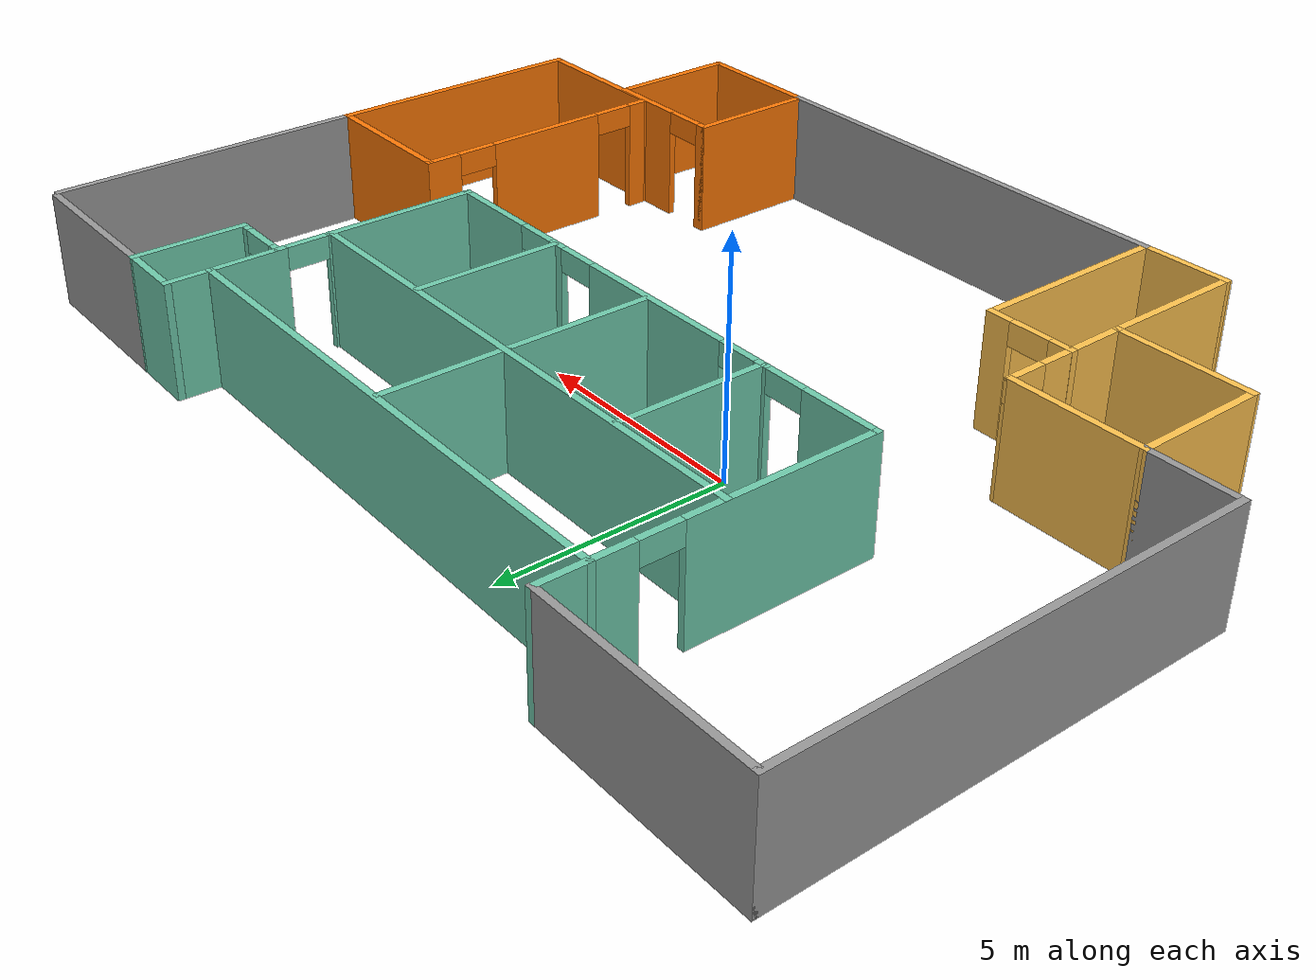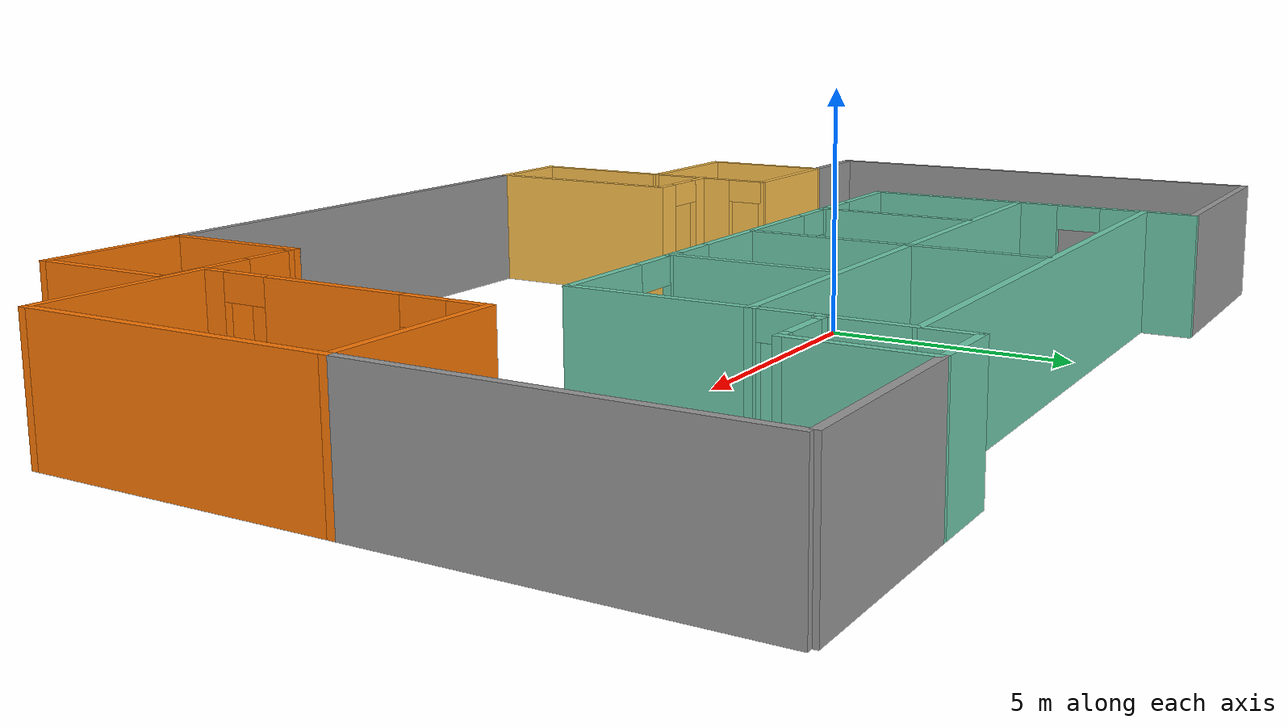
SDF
<?xml version='1.0'?>
<sdf version='1.7'>
  <model name='building'>
    <pose>2.87558 -1.4903 0 0 -0 0</pose>
    <link name='Wall_0'>
      <collision name='Wall_0_Collision'>
        <geometry>
          <box>
            <size>5 0.15 2.5</size>
          </box>
        </geometry>
        <pose>0 0 1.25 0 -0 0</pose>
      </collision>
      <visual name='Wall_0_Visual'>
        <pose>0 0 1.25 0 -0 0</pose>
        <geometry>
          <box>
            <size>5 0.15 2.5</size>
          </box>
        </geometry>
        <material>
          <script>
            <uri>file://media/materials/scripts/gazebo.material</uri>
            <name>Gazebo/Grey</name>
          </script>
          <ambient>1 1 1 1</ambient>
        </material>
        <meta>
          <layer>0</layer>
        </meta>
      </visual>
      <pose>-8.48058 7.9003 0 0 -0 3.14159</pose>
    </link>
    <link name='Wall_10'>
      <pose>-6.19858 -3.3677 0 0 -0 -1.56586</pose>
      <visual name='Wall_10_Visual_0'>
        <pose>-1.49252 0 1.25 0 -0 0</pose>
        <geometry>
          <box>
            <size>0.000994 0.15 2.5</size>
          </box>
        </geometry>
        <material>
          <script>
            <uri>file://media/materials/scripts/gazebo.material</uri>
            <name>Gazebo/Grey</name>
          </script>
          <ambient>1 0.764706 0.305882 1</ambient>
        </material>
        <meta>
          <layer>0</layer>
        </meta>
      </visual>
      <collision name='Wall_10_Collision_0'>
        <geometry>
          <box>
            <size>0.000994 0.15 2.5</size>
          </box>
        </geometry>
        <pose>-1.49252 0 1.25 0 -0 0</pose>
      </collision>
      <visual name='Wall_10_Visual_1'>
        <pose>0.450497 0 1.25 0 -0 0</pose>
        <geometry>
          <box>
            <size>2.08504 0.15 2.5</size>
          </box>
        </geometry>
        <material>
          <script>
            <uri>file://media/materials/scripts/gazebo.material</uri>
            <name>Gazebo/Grey</name>
          </script>
          <ambient>1 0.764706 0.305882 1</ambient>
        </material>
        <meta>
          <layer>0</layer>
        </meta>
      </visual>
      <collision name='Wall_10_Collision_1'>
        <geometry>
          <box>
            <size>2.08504 0.15 2.5</size>
          </box>
        </geometry>
        <pose>0.450497 0 1.25 0 -0 0</pose>
      </collision>
      <visual name='Wall_10_Visual_2'>
        <pose>-1.49252 0 2.25 0 -0 0</pose>
        <geometry>
          <box>
            <size>0.000994 0.15 0.5</size>
          </box>
        </geometry>
        <material>
          <script>
            <uri>file://media/materials/scripts/gazebo.material</uri>
            <name>Gazebo/Grey</name>
          </script>
          <ambient>1 0.764706 0.305882 1</ambient>
        </material>
        <meta>
          <layer>0</layer>
        </meta>
      </visual>
      <collision name='Wall_10_Collision_2'>
        <geometry>
          <box>
            <size>0.000994 0.15 0.5</size>
          </box>
        </geometry>
        <pose>-1.49252 0 2.25 0 -0 0</pose>
      </collision>
      <visual name='Wall_10_Visual_3'>
        <pose>-1.04202 0 2.25 0 -0 0</pose>
        <geometry>
          <box>
            <size>0.9 0.15 0.5</size>
          </box>
        </geometry>
        <material>
          <script>
            <uri>file://media/materials/scripts/gazebo.material</uri>
            <name>Gazebo/Grey</name>
          </script>
          <ambient>1 0.764706 0.305882 1</ambient>
        </material>
        <meta>
          <layer>0</layer>
        </meta>
      </visual>
      <collision name='Wall_10_Collision_3'>
        <geometry>
          <box>
            <size>0.9 0.15 0.5</size>
          </box>
        </geometry>
        <pose>-1.04202 0 2.25 0 -0 0</pose>
      </collision>
    </link>
    <link name='Wall_11'>
      <collision name='Wall_11_Collision'>
        <geometry>
          <box>
            <size>3 0.15 2.5</size>
          </box>
        </geometry>
        <pose>0 0 1.25 0 -0 0</pose>
      </collision>
      <visual name='Wall_11_Visual'>
        <pose>0 0 1.25 0 -0 0</pose>
        <geometry>
          <box>
            <size>3 0.15 2.5</size>
          </box>
        </geometry>
        <material>
          <script>
            <uri>file://media/materials/scripts/gazebo.material</uri>
            <name>Gazebo/Grey</name>
          </script>
          <ambient>1 0.764706 0.305882 1</ambient>
        </material>
        <meta>
          <layer>0</layer>
        </meta>
      </visual>
      <pose>-7.61658 -4.7857 0 0 -0 3.14159</pose>
    </link>
    <link name='Wall_12'>
      <collision name='Wall_12_Collision'>
        <geometry>
          <box>
            <size>2.98604 0.15 2.5</size>
          </box>
        </geometry>
        <pose>0 0 1.25 0 -0 0</pose>
      </collision>
      <visual name='Wall_12_Visual'>
        <pose>0 0 1.25 0 -0 0</pose>
        <geometry>
          <box>
            <size>2.98604 0.15 2.5</size>
          </box>
        </geometry>
        <material>
          <script>
            <uri>file://media/materials/scripts/gazebo.material</uri>
            <name>Gazebo/Grey</name>
          </script>
          <ambient>1 0.764706 0.305882 1</ambient>
        </material>
        <meta>
          <layer>0</layer>
        </meta>
      </visual>
      <pose>-9.04858 -3.3677 0 0 -0 1.57573</pose>
    </link>
    <link name='Wall_21'>
      <collision name='Wall_21_Collision'>
        <geometry>
          <box>
            <size>3.26403 0.15 2.5</size>
          </box>
        </geometry>
        <pose>0 0 1.25 0 -0 0</pose>
      </collision>
      <visual name='Wall_21_Visual'>
        <pose>0 0 1.25 0 -0 0</pose>
        <geometry>
          <box>
            <size>3.26403 0.15 2.5</size>
          </box>
        </geometry>
        <material>
          <script>
            <uri>file://media/materials/scripts/gazebo.material</uri>
            <name>Gazebo/Grey</name>
          </script>
          <ambient>1 0.764706 0.305882 1</ambient>
        </material>
        <meta>
          <layer>0</layer>
        </meta>
      </visual>
      <pose>-6.19858 -6.3427 0 0 -0 1.5663</pose>
    </link>
    <link name='Wall_23'>
      <pose>-5.27858 -3.5347 0 0 -0 0</pose>
      <visual name='Wall_23_Visual_0'>
        <pose>-0.728624 0 1.25 0 -0 0</pose>
        <geometry>
          <box>
            <size>0.542751 0.15 2.5</size>
          </box>
        </geometry>
        <material>
          <script>
            <uri>file://media/materials/scripts/gazebo.material</uri>
            <name>Gazebo/Grey</name>
          </script>
          <ambient>1 0.764706 0.305882 1</ambient>
        </material>
        <meta>
          <layer>0</layer>
        </meta>
      </visual>
      <collision name='Wall_23_Collision_0'>
        <geometry>
          <box>
            <size>0.542751 0.15 2.5</size>
          </box>
        </geometry>
        <pose>-0.728624 0 1.25 0 -0 0</pose>
      </collision>
      <visual name='Wall_23_Visual_1'>
        <pose>0.721376 0 1.25 0 -0 0</pose>
        <geometry>
          <box>
            <size>0.557249 0.15 2.5</size>
          </box>
        </geometry>
        <material>
          <script>
            <uri>file://media/materials/scripts/gazebo.material</uri>
            <name>Gazebo/Grey</name>
          </script>
          <ambient>1 0.764706 0.305882 1</ambient>
        </material>
        <meta>
          <layer>0</layer>
        </meta>
      </visual>
      <collision name='Wall_23_Collision_1'>
        <geometry>
          <box>
            <size>0.557249 0.15 2.5</size>
          </box>
        </geometry>
        <pose>0.721376 0 1.25 0 -0 0</pose>
      </collision>
      <visual name='Wall_23_Visual_2'>
        <pose>-0.007249 0 2.25 0 -0 0</pose>
        <geometry>
          <box>
            <size>0.9 0.15 0.5</size>
          </box>
        </geometry>
        <material>
          <script>
            <uri>file://media/materials/scripts/gazebo.material</uri>
            <name>Gazebo/Grey</name>
          </script>
          <ambient>1 0.764706 0.305882 1</ambient>
        </material>
        <meta>
          <layer>0</layer>
        </meta>
      </visual>
      <collision name='Wall_23_Collision_2'>
        <geometry>
          <box>
            <size>0.9 0.15 0.5</size>
          </box>
        </geometry>
        <pose>-0.007249 0 2.25 0 -0 0</pose>
      </collision>
    </link>
    <link name='Wall_26'>
      <collision name='Wall_26_Collision'>
        <geometry>
          <box>
            <size>4.5 0.15 2.5</size>
          </box>
        </geometry>
        <pose>0 0 1.25 0 -0 0</pose>
      </collision>
      <visual name='Wall_26_Visual'>
        <pose>0 0 1.25 0 -0 0</pose>
        <geometry>
          <box>
            <size>4.5 0.15 2.5</size>
          </box>
        </geometry>
        <material>
          <script>
            <uri>file://media/materials/scripts/gazebo.material</uri>
            <name>Gazebo/Grey</name>
          </script>
          <ambient>1 0.764706 0.305882 1</ambient>
        </material>
        <meta>
          <layer>0</layer>
        </meta>
      </visual>
      <pose>-4.35358 -5.7097 0 0 -0 -1.5708</pose>
    </link>
    <link name='Wall_27'>
      <collision name='Wall_27_Collision'>
        <geometry>
          <box>
            <size>2.00253 0.15 2.5</size>
          </box>
        </geometry>
        <pose>0 0 1.25 0 -0 0</pose>
      </collision>
      <visual name='Wall_27_Visual'>
        <pose>0 0 1.25 0 -0 0</pose>
        <geometry>
          <box>
            <size>2.00253 0.15 2.5</size>
          </box>
        </geometry>
        <material>
          <script>
            <uri>file://media/materials/scripts/gazebo.material</uri>
            <name>Gazebo/Grey</name>
          </script>
          <ambient>1 0.764706 0.305882 1</ambient>
        </material>
        <meta>
          <layer>0</layer>
        </meta>
      </visual>
      <pose>-5.27958 -7.8922 0 0 -0 -3.13349</pose>
    </link>
    <link name='Wall_29'>
      <collision name='Wall_29_Collision'>
        <geometry>
          <box>
            <size>10 0.15 2.5</size>
          </box>
        </geometry>
        <pose>0 0 1.25 0 -0 0</pose>
      </collision>
      <visual name='Wall_29_Visual'>
        <pose>0 0 1.25 0 -0 0</pose>
        <geometry>
          <box>
            <size>10 0.15 2.5</size>
          </box>
        </geometry>
        <material>
          <script>
            <uri>file://media/materials/scripts/gazebo.material</uri>
            <name>Gazebo/Grey</name>
          </script>
          <ambient>1 1 1 1</ambient>
        </material>
        <meta>
          <layer>0</layer>
        </meta>
      </visual>
      <pose>0.571421 -7.8847 0 0 -0 0</pose>
    </link>
    <link name='Wall_30'>
      <collision name='Wall_30_Collision'>
        <geometry>
          <box>
            <size>3 0.15 2.5</size>
          </box>
        </geometry>
        <pose>0 0 1.25 0 -0 0</pose>
      </collision>
      <visual name='Wall_30_Visual'>
        <pose>0 0 1.25 0 -0 0</pose>
        <geometry>
          <box>
            <size>3 0.15 2.5</size>
          </box>
        </geometry>
        <material>
          <script>
            <uri>file://media/materials/scripts/gazebo.material</uri>
            <name>Gazebo/Grey</name>
          </script>
          <ambient>0.996078 0.47451 0.0196078 1</ambient>
        </material>
        <meta>
          <layer>0</layer>
        </meta>
      </visual>
      <pose>5.49642 -6.4597 0 0 -0 1.5708</pose>
    </link>
    <link name='Wall_31'>
      <pose>6.92142 -5.0347 0 0 -0 0</pose>
      <visual name='Wall_31_Visual_0'>
        <pose>-1.36222 0 1.25 0 -0 0</pose>
        <geometry>
          <box>
            <size>0.275563 0.15 2.5</size>
          </box>
        </geometry>
        <material>
          <script>
            <uri>file://media/materials/scripts/gazebo.material</uri>
            <name>Gazebo/Grey</name>
          </script>
          <ambient>0.996078 0.47451 0.0196078 1</ambient>
        </material>
        <meta>
          <layer>0</layer>
        </meta>
      </visual>
      <collision name='Wall_31_Collision_0'>
        <geometry>
          <box>
            <size>0.275563 0.15 2.5</size>
          </box>
        </geometry>
        <pose>-1.36222 0 1.25 0 -0 0</pose>
      </collision>
      <visual name='Wall_31_Visual_1'>
        <pose>0.587782 0 1.25 0 -0 0</pose>
        <geometry>
          <box>
            <size>1.82444 0.15 2.5</size>
          </box>
        </geometry>
        <material>
          <script>
            <uri>file://media/materials/scripts/gazebo.material</uri>
            <name>Gazebo/Grey</name>
          </script>
          <ambient>0.996078 0.47451 0.0196078 1</ambient>
        </material>
        <meta>
          <layer>0</layer>
        </meta>
      </visual>
      <collision name='Wall_31_Collision_1'>
        <geometry>
          <box>
            <size>1.82444 0.15 2.5</size>
          </box>
        </geometry>
        <pose>0.587782 0 1.25 0 -0 0</pose>
      </collision>
      <visual name='Wall_31_Visual_2'>
        <pose>-0.774437 0 2.25 0 -0 0</pose>
        <geometry>
          <box>
            <size>0.9 0.15 0.5</size>
          </box>
        </geometry>
        <material>
          <script>
            <uri>file://media/materials/scripts/gazebo.material</uri>
            <name>Gazebo/Grey</name>
          </script>
          <ambient>0.996078 0.47451 0.0196078 1</ambient>
        </material>
        <meta>
          <layer>0</layer>
        </meta>
      </visual>
      <collision name='Wall_31_Collision_2'>
        <geometry>
          <box>
            <size>0.9 0.15 0.5</size>
          </box>
        </geometry>
        <pose>-0.774437 0 2.25 0 -0 0</pose>
      </collision>
    </link>
    <link name='Wall_32'>
      <collision name='Wall_32_Collision'>
        <geometry>
          <box>
            <size>3 0.15 2.5</size>
          </box>
        </geometry>
        <pose>0 0 1.25 0 -0 0</pose>
      </collision>
      <visual name='Wall_32_Visual'>
        <pose>0 0 1.25 0 -0 0</pose>
        <geometry>
          <box>
            <size>3 0.15 2.5</size>
          </box>
        </geometry>
        <material>
          <script>
            <uri>file://media/materials/scripts/gazebo.material</uri>
            <name>Gazebo/Grey</name>
          </script>
          <ambient>0.996078 0.47451 0.0196078 1</ambient>
        </material>
        <meta>
          <layer>0</layer>
        </meta>
      </visual>
      <pose>8.34642 -6.4597 0 0 -0 -1.5708</pose>
    </link>
    <link name='Wall_33'>
      <collision name='Wall_33_Collision'>
        <geometry>
          <box>
            <size>3 0.15 2.5</size>
          </box>
        </geometry>
        <pose>0 0 1.25 0 -0 0</pose>
      </collision>
      <visual name='Wall_33_Visual'>
        <pose>0 0 1.25 0 -0 0</pose>
        <geometry>
          <box>
            <size>3 0.15 2.5</size>
          </box>
        </geometry>
        <material>
          <script>
            <uri>file://media/materials/scripts/gazebo.material</uri>
            <name>Gazebo/Grey</name>
          </script>
          <ambient>0.996078 0.47451 0.0196078 1</ambient>
        </material>
        <meta>
          <layer>0</layer>
        </meta>
      </visual>
      <pose>6.92142 -7.8847 0 0 -0 3.14159</pose>
    </link>
    <link name='Wall_35'>
      <pose>-6.05558 4.4753 0 0 -0 -1.5708</pose>
      <visual name='Wall_35_Visual_0'>
        <pose>-2.51978 0 1.25 0 -0 0</pose>
        <geometry>
          <box>
            <size>1.96044 0.15 2.5</size>
          </box>
        </geometry>
        <material>
          <script>
            <uri>file://media/materials/scripts/gazebo.material</uri>
            <name>Gazebo/Grey</name>
          </script>
          <ambient>0.435294 0.796078 0.67451 1</ambient>
        </material>
        <meta>
          <layer>0</layer>
        </meta>
      </visual>
      <collision name='Wall_35_Collision_0'>
        <geometry>
          <box>
            <size>1.96044 0.15 2.5</size>
          </box>
        </geometry>
        <pose>-2.51978 0 1.25 0 -0 0</pose>
      </collision>
      <visual name='Wall_35_Visual_1'>
        <pose>1.43022 0 1.25 0 -0 0</pose>
        <geometry>
          <box>
            <size>4.13956 0.15 2.5</size>
          </box>
        </geometry>
        <material>
          <script>
            <uri>file://media/materials/scripts/gazebo.material</uri>
            <name>Gazebo/Grey</name>
          </script>
          <ambient>0.435294 0.796078 0.67451 1</ambient>
        </material>
        <meta>
          <layer>0</layer>
        </meta>
      </visual>
      <collision name='Wall_35_Collision_1'>
        <geometry>
          <box>
            <size>4.13956 0.15 2.5</size>
          </box>
        </geometry>
        <pose>1.43022 0 1.25 0 -0 0</pose>
      </collision>
      <visual name='Wall_35_Visual_2'>
        <pose>-1.08956 0 2.25 0 -0 0</pose>
        <geometry>
          <box>
            <size>0.9 0.15 0.5</size>
          </box>
        </geometry>
        <material>
          <script>
            <uri>file://media/materials/scripts/gazebo.material</uri>
            <name>Gazebo/Grey</name>
          </script>
          <ambient>0.435294 0.796078 0.67451 1</ambient>
        </material>
        <meta>
          <layer>0</layer>
        </meta>
      </visual>
      <collision name='Wall_35_Collision_2'>
        <geometry>
          <box>
            <size>0.9 0.15 0.5</size>
          </box>
        </geometry>
        <pose>-1.08956 0 2.25 0 -0 0</pose>
      </collision>
    </link>
    <link name='Wall_37'>
      <pose>-0.130579 1.0503 0 0 -0 0</pose>
      <visual name='Wall_37_Visual_0'>
        <pose>-5.10242 0 1.25 0 -0 0</pose>
        <geometry>
          <box>
            <size>1.79517 0.15 2.5</size>
          </box>
        </geometry>
        <material>
          <script>
            <uri>file://media/materials/scripts/gazebo.material</uri>
            <name>Gazebo/Grey</name>
          </script>
          <ambient>0.435294 0.796078 0.67451 1</ambient>
        </material>
        <meta>
          <layer>0</layer>
        </meta>
      </visual>
      <collision name='Wall_37_Collision_0'>
        <geometry>
          <box>
            <size>1.79517 0.15 2.5</size>
          </box>
        </geometry>
        <pose>-5.10242 0 1.25 0 -0 0</pose>
      </collision>
      <visual name='Wall_37_Visual_1'>
        <pose>-3.14066 0 1.25 0 -0 0</pose>
        <geometry>
          <box>
            <size>0.328343 0.15 2.5</size>
          </box>
        </geometry>
        <material>
          <script>
            <uri>file://media/materials/scripts/gazebo.material</uri>
            <name>Gazebo/Grey</name>
          </script>
          <ambient>0.435294 0.796078 0.67451 1</ambient>
        </material>
        <meta>
          <layer>0</layer>
        </meta>
      </visual>
      <collision name='Wall_37_Collision_1'>
        <geometry>
          <box>
            <size>0.328343 0.15 2.5</size>
          </box>
        </geometry>
        <pose>-3.14066 0 1.25 0 -0 0</pose>
      </collision>
      <visual name='Wall_37_Visual_2'>
        <pose>-0.185341 0 1.25 0 -0 0</pose>
        <geometry>
          <box>
            <size>3.7823 0.15 2.5</size>
          </box>
        </geometry>
        <material>
          <script>
            <uri>file://media/materials/scripts/gazebo.material</uri>
            <name>Gazebo/Grey</name>
          </script>
          <ambient>0.435294 0.796078 0.67451 1</ambient>
        </material>
        <meta>
          <layer>0</layer>
        </meta>
      </visual>
      <collision name='Wall_37_Collision_2'>
        <geometry>
          <box>
            <size>3.7823 0.15 2.5</size>
          </box>
        </geometry>
        <pose>-0.185341 0 1.25 0 -0 0</pose>
      </collision>
      <visual name='Wall_37_Visual_3'>
        <pose>2.81863 0 1.25 0 -0 0</pose>
        <geometry>
          <box>
            <size>0.425638 0.15 2.5</size>
          </box>
        </geometry>
        <material>
          <script>
            <uri>file://media/materials/scripts/gazebo.material</uri>
            <name>Gazebo/Grey</name>
          </script>
          <ambient>0.435294 0.796078 0.67451 1</ambient>
        </material>
        <meta>
          <layer>0</layer>
        </meta>
      </visual>
      <collision name='Wall_37_Collision_3'>
        <geometry>
          <box>
            <size>0.425638 0.15 2.5</size>
          </box>
        </geometry>
        <pose>2.81863 0 1.25 0 -0 0</pose>
      </collision>
      <visual name='Wall_37_Visual_4'>
        <pose>4.96572 0 1.25 0 -0 0</pose>
        <geometry>
          <box>
            <size>2.06855 0.15 2.5</size>
          </box>
        </geometry>
        <material>
          <script>
            <uri>file://media/materials/scripts/gazebo.material</uri>
            <name>Gazebo/Grey</name>
          </script>
          <ambient>0.435294 0.796078 0.67451 1</ambient>
        </material>
        <meta>
          <layer>0</layer>
        </meta>
      </visual>
      <collision name='Wall_37_Collision_4'>
        <geometry>
          <box>
            <size>2.06855 0.15 2.5</size>
          </box>
        </geometry>
        <pose>4.96572 0 1.25 0 -0 0</pose>
      </collision>
      <visual name='Wall_37_Visual_5'>
        <pose>-3.75483 0 2.25 0 -0 0</pose>
        <geometry>
          <box>
            <size>0.9 0.15 0.5</size>
          </box>
        </geometry>
        <material>
          <script>
            <uri>file://media/materials/scripts/gazebo.material</uri>
            <name>Gazebo/Grey</name>
          </script>
          <ambient>0.435294 0.796078 0.67451 1</ambient>
        </material>
        <meta>
          <layer>0</layer>
        </meta>
      </visual>
      <collision name='Wall_37_Collision_5'>
        <geometry>
          <box>
            <size>0.9 0.15 0.5</size>
          </box>
        </geometry>
        <pose>-3.75483 0 2.25 0 -0 0</pose>
      </collision>
      <visual name='Wall_37_Visual_6'>
        <pose>-2.52649 0 2.25 0 -0 0</pose>
        <geometry>
          <box>
            <size>0.9 0.15 0.5</size>
          </box>
        </geometry>
        <material>
          <script>
            <uri>file://media/materials/scripts/gazebo.material</uri>
            <name>Gazebo/Grey</name>
          </script>
          <ambient>0.435294 0.796078 0.67451 1</ambient>
        </material>
        <meta>
          <layer>0</layer>
        </meta>
      </visual>
      <collision name='Wall_37_Collision_6'>
        <geometry>
          <box>
            <size>0.9 0.15 0.5</size>
          </box>
        </geometry>
        <pose>-2.52649 0 2.25 0 -0 0</pose>
      </collision>
      <visual name='Wall_37_Visual_7'>
        <pose>2.15581 0 2.25 0 -0 0</pose>
        <geometry>
          <box>
            <size>0.9 0.15 0.5</size>
          </box>
        </geometry>
        <material>
          <script>
            <uri>file://media/materials/scripts/gazebo.material</uri>
            <name>Gazebo/Grey</name>
          </script>
          <ambient>0.435294 0.796078 0.67451 1</ambient>
        </material>
        <meta>
          <layer>0</layer>
        </meta>
      </visual>
      <collision name='Wall_37_Collision_7'>
        <geometry>
          <box>
            <size>0.9 0.15 0.5</size>
          </box>
        </geometry>
        <pose>2.15581 0 2.25 0 -0 0</pose>
      </collision>
      <visual name='Wall_37_Visual_8'>
        <pose>3.48145 0 2.25 0 -0 0</pose>
        <geometry>
          <box>
            <size>0.9 0.15 0.5</size>
          </box>
        </geometry>
        <material>
          <script>
            <uri>file://media/materials/scripts/gazebo.material</uri>
            <name>Gazebo/Grey</name>
          </script>
          <ambient>0.435294 0.796078 0.67451 1</ambient>
        </material>
        <meta>
          <layer>0</layer>
        </meta>
      </visual>
      <collision name='Wall_37_Collision_8'>
        <geometry>
          <box>
            <size>0.9 0.15 0.5</size>
          </box>
        </geometry>
        <pose>3.48145 0 2.25 0 -0 0</pose>
      </collision>
    </link>
    <link name='Wall_38'>
      <pose>5.79442 3.9753 0 0 -0 1.5708</pose>
      <visual name='Wall_38_Visual_0'>
        <pose>-1.29507 0 1.25 0 -0 0</pose>
        <geometry>
          <box>
            <size>3.40985 0.15 2.5</size>
          </box>
        </geometry>
        <material>
          <script>
            <uri>file://media/materials/scripts/gazebo.material</uri>
            <name>Gazebo/Grey</name>
          </script>
          <ambient>0.435294 0.796078 0.67451 1</ambient>
        </material>
        <meta>
          <layer>0</layer>
        </meta>
      </visual>
      <collision name='Wall_38_Collision_0'>
        <geometry>
          <box>
            <size>3.40985 0.15 2.5</size>
          </box>
        </geometry>
        <pose>-1.29507 0 1.25 0 -0 0</pose>
      </collision>
      <visual name='Wall_38_Visual_1'>
        <pose>2.15493 0 1.25 0 -0 0</pose>
        <geometry>
          <box>
            <size>1.69015 0.15 2.5</size>
          </box>
        </geometry>
        <material>
          <script>
            <uri>file://media/materials/scripts/gazebo.material</uri>
            <name>Gazebo/Grey</name>
          </script>
          <ambient>0.435294 0.796078 0.67451 1</ambient>
        </material>
        <meta>
          <layer>0</layer>
        </meta>
      </visual>
      <collision name='Wall_38_Collision_1'>
        <geometry>
          <box>
            <size>1.69015 0.15 2.5</size>
          </box>
        </geometry>
        <pose>2.15493 0 1.25 0 -0 0</pose>
      </collision>
      <visual name='Wall_38_Visual_2'>
        <pose>0.859854 0 2.25 0 -0 0</pose>
        <geometry>
          <box>
            <size>0.9 0.15 0.5</size>
          </box>
        </geometry>
        <material>
          <script>
            <uri>file://media/materials/scripts/gazebo.material</uri>
            <name>Gazebo/Grey</name>
          </script>
          <ambient>0.435294 0.796078 0.67451 1</ambient>
        </material>
        <meta>
          <layer>0</layer>
        </meta>
      </visual>
      <collision name='Wall_38_Collision_2'>
        <geometry>
          <box>
            <size>0.9 0.15 0.5</size>
          </box>
        </geometry>
        <pose>0.859854 0 2.25 0 -0 0</pose>
      </collision>
    </link>
    <link name='Wall_39'>
      <collision name='Wall_39_Collision'>
        <geometry>
          <box>
            <size>12 0.15 2.5</size>
          </box>
        </geometry>
        <pose>0 0 1.25 0 -0 0</pose>
      </collision>
      <visual name='Wall_39_Visual'>
        <pose>0 0 1.25 0 -0 0</pose>
        <geometry>
          <box>
            <size>12 0.15 2.5</size>
          </box>
        </geometry>
        <material>
          <script>
            <uri>file://media/materials/scripts/gazebo.material</uri>
            <name>Gazebo/Grey</name>
          </script>
          <ambient>0.435294 0.796078 0.67451 1</ambient>
        </material>
        <meta>
          <layer>0</layer>
        </meta>
      </visual>
      <pose>-0.130579 6.9003 0 0 -0 3.14159</pose>
    </link>
    <link name='Wall_41'>
      <collision name='Wall_41_Collision'>
        <geometry>
          <box>
            <size>12 0.15 2.5</size>
          </box>
        </geometry>
        <pose>0 0 1.25 0 -0 0</pose>
      </collision>
      <visual name='Wall_41_Visual'>
        <pose>0 0 1.25 0 -0 0</pose>
        <geometry>
          <box>
            <size>12 0.15 2.5</size>
          </box>
        </geometry>
        <material>
          <script>
            <uri>file://media/materials/scripts/gazebo.material</uri>
            <name>Gazebo/Grey</name>
          </script>
          <ambient>0.435294 0.796078 0.67451 1</ambient>
        </material>
        <meta>
          <layer>0</layer>
        </meta>
      </visual>
      <pose>-0.124579 4.2603 0 0 -0 0</pose>
    </link>
    <link name='Wall_43'>
      <collision name='Wall_43_Collision'>
        <geometry>
          <box>
            <size>3.25 0.15 2.5</size>
          </box>
        </geometry>
        <pose>0 0 1.25 0 -0 0</pose>
      </collision>
      <visual name='Wall_43_Visual'>
        <pose>0 0 1.25 0 -0 0</pose>
        <geometry>
          <box>
            <size>3.25 0.15 2.5</size>
          </box>
        </geometry>
        <material>
          <script>
            <uri>file://media/materials/scripts/gazebo.material</uri>
            <name>Gazebo/Grey</name>
          </script>
          <ambient>0.435294 0.796078 0.67451 1</ambient>
        </material>
        <meta>
          <layer>0</layer>
        </meta>
      </visual>
      <pose>-0.135579 2.6783 0 0 -0 1.5708</pose>
    </link>
    <link name='Wall_45'>
      <collision name='Wall_45_Collision'>
        <geometry>
          <box>
            <size>3.25 0.15 2.5</size>
          </box>
        </geometry>
        <pose>0 0 1.25 0 -0 0</pose>
      </collision>
      <visual name='Wall_45_Visual'>
        <pose>0 0 1.25 0 -0 0</pose>
        <geometry>
          <box>
            <size>3.25 0.15 2.5</size>
          </box>
        </geometry>
        <material>
          <script>
            <uri>file://media/materials/scripts/gazebo.material</uri>
            <name>Gazebo/Grey</name>
          </script>
          <ambient>0.435294 0.796078 0.67451 1</ambient>
        </material>
        <meta>
          <layer>0</layer>
        </meta>
      </visual>
      <pose>-3.27458 2.6383 0 0 -0 -1.5708</pose>
    </link>
    <link name='Wall_47'>
      <collision name='Wall_47_Collision'>
        <geometry>
          <box>
            <size>3.25 0.15 2.5</size>
          </box>
        </geometry>
        <pose>0 0 1.25 0 -0 0</pose>
      </collision>
      <visual name='Wall_47_Visual'>
        <pose>0 0 1.25 0 -0 0</pose>
        <geometry>
          <box>
            <size>3.25 0.15 2.5</size>
          </box>
        </geometry>
        <material>
          <script>
            <uri>file://media/materials/scripts/gazebo.material</uri>
            <name>Gazebo/Grey</name>
          </script>
          <ambient>0.435294 0.796078 0.67451 1</ambient>
        </material>
        <meta>
          <layer>0</layer>
        </meta>
      </visual>
      <pose>2.73342 2.6633 0 0 -0 -1.5708</pose>
    </link>
    <link name='Wall_49'>
      <collision name='Wall_49_Collision'>
        <geometry>
          <box>
            <size>2.75 0.15 2.5</size>
          </box>
        </geometry>
        <pose>0 0 1.25 0 -0 0</pose>
      </collision>
      <visual name='Wall_49_Visual'>
        <pose>0 0 1.25 0 -0 0</pose>
        <geometry>
          <box>
            <size>2.75 0.15 2.5</size>
          </box>
        </geometry>
        <material>
          <script>
            <uri>file://media/materials/scripts/gazebo.material</uri>
            <name>Gazebo/Grey</name>
          </script>
          <ambient>0.435294 0.796078 0.67451 1</ambient>
        </material>
        <meta>
          <layer>0</layer>
        </meta>
      </visual>
      <pose>-0.135579 5.5283 0 0 -0 1.5708</pose>
    </link>
    <link name='Wall_52'>
      <pose>6.48942 5.4553 0 0 -0 -0.005805</pose>
      <visual name='Wall_52_Visual_0'>
        <pose>-0.607697 0 1.25 0 -0 0</pose>
        <geometry>
          <box>
            <size>0.312913 0.15 2.5</size>
          </box>
        </geometry>
        <material>
          <script>
            <uri>file://media/materials/scripts/gazebo.material</uri>
            <name>Gazebo/Grey</name>
          </script>
          <ambient>0.435294 0.796078 0.67451 1</ambient>
        </material>
        <meta>
          <layer>0</layer>
        </meta>
      </visual>
      <collision name='Wall_52_Collision_0'>
        <geometry>
          <box>
            <size>0.312913 0.15 2.5</size>
          </box>
        </geometry>
        <pose>-0.607697 0 1.25 0 -0 0</pose>
      </collision>
      <visual name='Wall_52_Visual_1'>
        <pose>0.606456 0 1.25 0 -0 0</pose>
        <geometry>
          <box>
            <size>0.315394 0.15 2.5</size>
          </box>
        </geometry>
        <material>
          <script>
            <uri>file://media/materials/scripts/gazebo.material</uri>
            <name>Gazebo/Grey</name>
          </script>
          <ambient>0.435294 0.796078 0.67451 1</ambient>
        </material>
        <meta>
          <layer>0</layer>
        </meta>
      </visual>
      <collision name='Wall_52_Collision_1'>
        <geometry>
          <box>
            <size>0.315394 0.15 2.5</size>
          </box>
        </geometry>
        <pose>0.606456 0 1.25 0 -0 0</pose>
      </collision>
      <visual name='Wall_52_Visual_2'>
        <pose>-0.001241 0 2.25 0 -0 0</pose>
        <geometry>
          <box>
            <size>0.9 0.15 0.5</size>
          </box>
        </geometry>
        <material>
          <script>
            <uri>file://media/materials/scripts/gazebo.material</uri>
            <name>Gazebo/Grey</name>
          </script>
          <ambient>0.435294 0.796078 0.67451 1</ambient>
        </material>
        <meta>
          <layer>0</layer>
        </meta>
      </visual>
      <collision name='Wall_52_Collision_2'>
        <geometry>
          <box>
            <size>0.9 0.15 0.5</size>
          </box>
        </geometry>
        <pose>-0.001241 0 2.25 0 -0 0</pose>
      </collision>
    </link>
    <link name='Wall_56'>
      <collision name='Wall_56_Collision'>
        <geometry>
          <box>
            <size>2.50006 0.15 2.5</size>
          </box>
        </geometry>
        <pose>0 0 1.25 0 -0 0</pose>
      </collision>
      <visual name='Wall_56_Visual'>
        <pose>0 0 1.25 0 -0 0</pose>
        <geometry>
          <box>
            <size>2.50006 0.15 2.5</size>
          </box>
        </geometry>
        <material>
          <script>
            <uri>file://media/materials/scripts/gazebo.material</uri>
            <name>Gazebo/Grey</name>
          </script>
          <ambient>0.435294 0.796078 0.67451 1</ambient>
        </material>
        <meta>
          <layer>0</layer>
        </meta>
      </visual>
      <pose>7.18642 6.6263 0 0 -0 1.56399</pose>
    </link>
    <link name='Wall_60'>
      <collision name='Wall_60_Collision'>
        <geometry>
          <box>
            <size>1.54431 0.15 2.5</size>
          </box>
        </geometry>
        <pose>0 0 1.25 0 -0 0</pose>
      </collision>
      <visual name='Wall_60_Visual'>
        <pose>0 0 1.25 0 -0 0</pose>
        <geometry>
          <box>
            <size>1.54431 0.15 2.5</size>
          </box>
        </geometry>
        <material>
          <script>
            <uri>file://media/materials/scripts/gazebo.material</uri>
            <name>Gazebo/Grey</name>
          </script>
          <ambient>0.435294 0.796078 0.67451 1</ambient>
        </material>
        <meta>
          <layer>0</layer>
        </meta>
      </visual>
      <pose>6.49742 7.8053 0 0 -0 3.13585</pose>
    </link>
    <link name='Wall_61'>
      <collision name='Wall_61_Collision'>
        <geometry>
          <box>
            <size>1.05886 0.15 2.5</size>
          </box>
        </geometry>
        <pose>0 0 1.25 0 -0 0</pose>
      </collision>
      <visual name='Wall_61_Visual'>
        <pose>0 0 1.25 0 -0 0</pose>
        <geometry>
          <box>
            <size>1.05886 0.15 2.5</size>
          </box>
        </geometry>
        <material>
          <script>
            <uri>file://media/materials/scripts/gazebo.material</uri>
            <name>Gazebo/Grey</name>
          </script>
          <ambient>0.435294 0.796078 0.67451 1</ambient>
        </material>
        <meta>
          <layer>0</layer>
        </meta>
      </visual>
      <pose>5.79742 7.3548 0 0 -0 -1.5774</pose>
    </link>
    <link name='Wall_64'>
      <pose>7.55542 -2.0627 0 0 -0 1.5708</pose>
      <visual name='Wall_64_Visual_0'>
        <pose>-2.71161 0 1.25 0 -0 0</pose>
        <geometry>
          <box>
            <size>0.57678 0.15 2.5</size>
          </box>
        </geometry>
        <material>
          <script>
            <uri>file://media/materials/scripts/gazebo.material</uri>
            <name>Gazebo/Grey</name>
          </script>
          <ambient>0.996078 0.47451 0.0196078 1</ambient>
        </material>
        <meta>
          <layer>0</layer>
        </meta>
      </visual>
      <collision name='Wall_64_Collision_0'>
        <geometry>
          <box>
            <size>0.57678 0.15 2.5</size>
          </box>
        </geometry>
        <pose>-2.71161 0 1.25 0 -0 0</pose>
      </collision>
      <visual name='Wall_64_Visual_1'>
        <pose>-0.12356 0 1.25 0 -0 0</pose>
        <geometry>
          <box>
            <size>2.79932 0.15 2.5</size>
          </box>
        </geometry>
        <material>
          <script>
            <uri>file://media/materials/scripts/gazebo.material</uri>
            <name>Gazebo/Grey</name>
          </script>
          <ambient>0.996078 0.47451 0.0196078 1</ambient>
        </material>
        <meta>
          <layer>0</layer>
        </meta>
      </visual>
      <collision name='Wall_64_Collision_1'>
        <geometry>
          <box>
            <size>2.79932 0.15 2.5</size>
          </box>
        </geometry>
        <pose>-0.12356 0 1.25 0 -0 0</pose>
      </collision>
      <visual name='Wall_64_Visual_2'>
        <pose>2.58805 0 1.25 0 -0 0</pose>
        <geometry>
          <box>
            <size>0.8239 0.15 2.5</size>
          </box>
        </geometry>
        <material>
          <script>
            <uri>file://media/materials/scripts/gazebo.material</uri>
            <name>Gazebo/Grey</name>
          </script>
          <ambient>0.996078 0.47451 0.0196078 1</ambient>
        </material>
        <meta>
          <layer>0</layer>
        </meta>
      </visual>
      <collision name='Wall_64_Collision_2'>
        <geometry>
          <box>
            <size>0.8239 0.15 2.5</size>
          </box>
        </geometry>
        <pose>2.58805 0 1.25 0 -0 0</pose>
      </collision>
      <visual name='Wall_64_Visual_3'>
        <pose>-1.97322 0 2.25 0 -0 0</pose>
        <geometry>
          <box>
            <size>0.9 0.15 0.5</size>
          </box>
        </geometry>
        <material>
          <script>
            <uri>file://media/materials/scripts/gazebo.material</uri>
            <name>Gazebo/Grey</name>
          </script>
          <ambient>0.996078 0.47451 0.0196078 1</ambient>
        </material>
        <meta>
          <layer>0</layer>
        </meta>
      </visual>
      <collision name='Wall_64_Collision_3'>
        <geometry>
          <box>
            <size>0.9 0.15 0.5</size>
          </box>
        </geometry>
        <pose>-1.97322 0 2.25 0 -0 0</pose>
      </collision>
      <visual name='Wall_64_Visual_4'>
        <pose>1.7261 0 2.25 0 -0 0</pose>
        <geometry>
          <box>
            <size>0.9 0.15 0.5</size>
          </box>
        </geometry>
        <material>
          <script>
            <uri>file://media/materials/scripts/gazebo.material</uri>
            <name>Gazebo/Grey</name>
          </script>
          <ambient>0.996078 0.47451 0.0196078 1</ambient>
        </material>
        <meta>
          <layer>0</layer>
        </meta>
      </visual>
      <collision name='Wall_64_Collision_4'>
        <geometry>
          <box>
            <size>0.9 0.15 0.5</size>
          </box>
        </geometry>
        <pose>1.7261 0 2.25 0 -0 0</pose>
      </collision>
    </link>
    <link name='Wall_65'>
      <collision name='Wall_65_Collision'>
        <geometry>
          <box>
            <size>3.5 0.15 2.5</size>
          </box>
        </geometry>
        <pose>0 0 1.25 0 -0 0</pose>
      </collision>
      <visual name='Wall_65_Visual'>
        <pose>0 0 1.25 0 -0 0</pose>
        <geometry>
          <box>
            <size>3.5 0.15 2.5</size>
          </box>
        </geometry>
        <material>
          <script>
            <uri>file://media/materials/scripts/gazebo.material</uri>
            <name>Gazebo/Grey</name>
          </script>
          <ambient>0.996078 0.47451 0.0196078 1</ambient>
        </material>
        <meta>
          <layer>0</layer>
        </meta>
      </visual>
      <pose>9.23042 0.862303 0 0 -0 0</pose>
    </link>
    <link name='Wall_66'>
      <collision name='Wall_66_Collision'>
        <geometry>
          <box>
            <size>6 0.15 2.5</size>
          </box>
        </geometry>
        <pose>0 0 1.25 0 -0 0</pose>
      </collision>
      <visual name='Wall_66_Visual'>
        <pose>0 0 1.25 0 -0 0</pose>
        <geometry>
          <box>
            <size>6 0.15 2.5</size>
          </box>
        </geometry>
        <material>
          <script>
            <uri>file://media/materials/scripts/gazebo.material</uri>
            <name>Gazebo/Grey</name>
          </script>
          <ambient>0.996078 0.47451 0.0196078 1</ambient>
        </material>
        <meta>
          <layer>0</layer>
        </meta>
      </visual>
      <pose>10.9054 -2.0627 0 0 -0 -1.5708</pose>
    </link>
    <link name='Wall_67'>
      <collision name='Wall_67_Collision'>
        <geometry>
          <box>
            <size>3.5 0.15 2.5</size>
          </box>
        </geometry>
        <pose>0 0 1.25 0 -0 0</pose>
      </collision>
      <visual name='Wall_67_Visual'>
        <pose>0 0 1.25 0 -0 0</pose>
        <geometry>
          <box>
            <size>3.5 0.15 2.5</size>
          </box>
        </geometry>
        <material>
          <script>
            <uri>file://media/materials/scripts/gazebo.material</uri>
            <name>Gazebo/Grey</name>
          </script>
          <ambient>0.996078 0.47451 0.0196078 1</ambient>
        </material>
        <meta>
          <layer>0</layer>
        </meta>
      </visual>
      <pose>9.23042 -4.9877 0 0 -0 3.14159</pose>
    </link>
    <link name='Wall_7'>
      <collision name='Wall_7_Collision'>
        <geometry>
          <box>
            <size>10 0.15 2.5</size>
          </box>
        </geometry>
        <pose>0 0 1.25 0 -0 0</pose>
      </collision>
      <visual name='Wall_7_Visual'>
        <pose>0 0 1.25 0 -0 0</pose>
        <geometry>
          <box>
            <size>10 0.15 2.5</size>
          </box>
        </geometry>
        <material>
          <script>
            <uri>file://media/materials/scripts/gazebo.material</uri>
            <name>Gazebo/Grey</name>
          </script>
          <ambient>1 1 1 1</ambient>
        </material>
        <meta>
          <layer>0</layer>
        </meta>
      </visual>
      <pose>-10.9056 2.9753 0 0 -0 -1.5708</pose>
    </link>
    <link name='Wall_74'>
      <collision name='Wall_74_Collision'>
        <geometry>
          <box>
            <size>3.75233 0.15 2.5</size>
          </box>
        </geometry>
        <pose>0 0 1.25 0 -0 0</pose>
      </collision>
      <visual name='Wall_74_Visual'>
        <pose>0 0 1.25 0 -0 0</pose>
        <geometry>
          <box>
            <size>3.75233 0.15 2.5</size>
          </box>
        </geometry>
        <material>
          <script>
            <uri>file://media/materials/scripts/gazebo.material</uri>
            <name>Gazebo/Grey</name>
          </script>
          <ambient>1 1 1 1</ambient>
        </material>
        <meta>
          <layer>0</layer>
        </meta>
      </visual>
      <pose>8.99559 7.80117 0 0 -0 -7.5e-05</pose>
    </link>
    <link name='Wall_76'>
      <collision name='Wall_76_Collision'>
        <geometry>
          <box>
            <size>7 0.15 2.5</size>
          </box>
        </geometry>
        <pose>0 0 1.25 0 -0 0</pose>
      </collision>
      <visual name='Wall_76_Visual'>
        <pose>0 0 1.25 0 -0 0</pose>
        <geometry>
          <box>
            <size>7 0.15 2.5</size>
          </box>
        </geometry>
        <material>
          <script>
            <uri>file://media/materials/scripts/gazebo.material</uri>
            <name>Gazebo/Grey</name>
          </script>
          <ambient>1 1 1 1</ambient>
        </material>
        <meta>
          <layer>0</layer>
        </meta>
      </visual>
      <pose>10.9055 4.28713 0 0 -0 1.57077</pose>
    </link>
    <link name='Wall_8'>
      <collision name='Wall_8_Collision'>
        <geometry>
          <box>
            <size>2 0.15 2.5</size>
          </box>
        </geometry>
        <pose>0 0 1.25 0 -0 0</pose>
      </collision>
      <visual name='Wall_8_Visual'>
        <pose>0 0 1.25 0 -0 0</pose>
        <geometry>
          <box>
            <size>2 0.15 2.5</size>
          </box>
        </geometry>
        <material>
          <script>
            <uri>file://media/materials/scripts/gazebo.material</uri>
            <name>Gazebo/Grey</name>
          </script>
          <ambient>1 1 1 1</ambient>
        </material>
        <meta>
          <layer>0</layer>
        </meta>
      </visual>
      <pose>-9.98058 -1.9497 0 0 -0 0</pose>
    </link>
    <link name='Wall_9'>
      <collision name='Wall_9_Collision'>
        <geometry>
          <box>
            <size>3 0.15 2.5</size>
          </box>
        </geometry>
        <pose>0 0 1.25 0 -0 0</pose>
      </collision>
      <visual name='Wall_9_Visual'>
        <pose>0 0 1.25 0 -0 0</pose>
        <geometry>
          <box>
            <size>3 0.15 2.5</size>
          </box>
        </geometry>
        <material>
          <script>
            <uri>file://media/materials/scripts/gazebo.material</uri>
            <name>Gazebo/Grey</name>
          </script>
          <ambient>1 0.764706 0.305882 1</ambient>
        </material>
        <meta>
          <layer>0</layer>
        </meta>
      </visual>
      <pose>-7.63058 -1.9497 0 0 -0 0</pose>
    </link>
    <static>1</static>
  </model>
</sdf>
